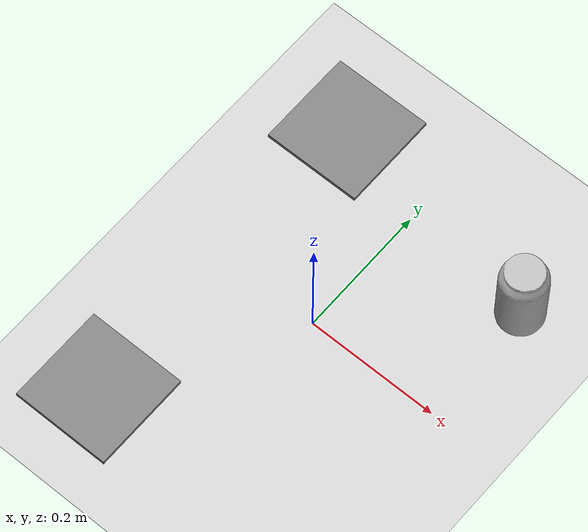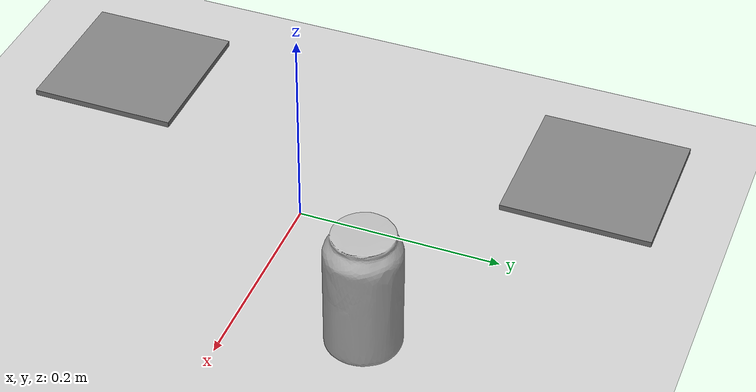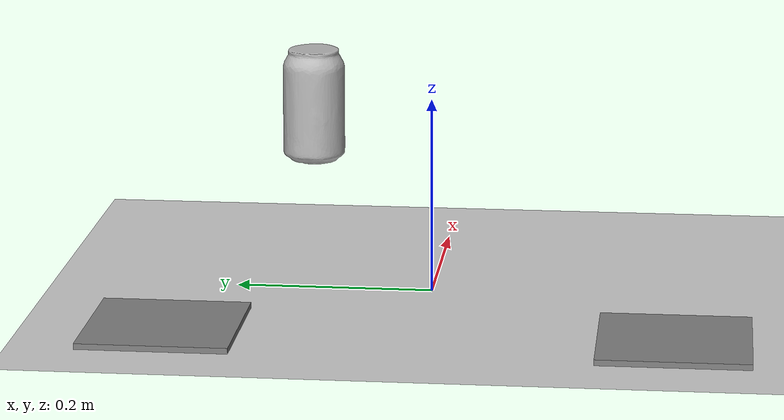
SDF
<?xml version="1.0" ?>
<sdf version="1.7">
  <world name="default">
    <physics name="default_physics" type="ode">
      <!-- 物理步长 4 ms（250 Hz），进一步降低单核 CPU 压力；PTP/MoveIt 控制器周期为 50 Hz，250 Hz 物理保有 5 倍裕度 -->
      <max_step_size>0.004</max_step_size>
      <real_time_factor>1</real_time_factor>
      <!-- 显式声明每秒物理步数，避免回退到 1000 Hz 默认值 -->
      <real_time_update_rate>250</real_time_update_rate>
      <gravity>0.0 0.0 -9.8</gravity>
    </physics>

    <plugin filename="gz-sim-physics-system" name="gz::sim::systems::Physics"/>
    <plugin filename="gz-sim-user-commands-system" name="gz::sim::systems::UserCommands"/>
    <plugin filename="gz-sim-scene-broadcaster-system" name="gz::sim::systems::SceneBroadcaster"/>
    <plugin filename="gz-sim-sensors-system" name="gz::sim::systems::Sensors">
      <render_engine>ogre2</render_engine>
    </plugin>
    <plugin filename="gz-sim-contact-system" name="gz::sim::systems::Contact"/>

    <include>
      <uri>https://fuel.gazebosim.org/1.0/OpenRobotics/models/Sun</uri>
    </include>

    <include>
      <uri>https://fuel.gazebosim.org/1.0/OpenRobotics/models/Ground Plane</uri>
    </include>

    <!-- 相机装在 torso_link 高 0.5m、pitch 25°向下、yaw 90°，视锥指向 +Y 方向。
         只有 y >= 0.10 的物体能进入点云。把 coke_can 移到 y=0.15 让它被看到。
         red_cylinder + mustard + cheezit 暂时注释，只留 coke_can 作为唯一目标，
         简化感知调试。 -->

    <include>
      <uri>model://coke_can</uri>
      <pose>0.22 0.15 0.075 0 0 0</pose>
    </include>

    <!-- Bin / drop zone -->
    <model name="bin_left">
      <static>true</static>
      <pose>-0.15 0.25 0 0 0 0</pose>
      <link name="link">
        <visual name="visual">
          <geometry><box><size>0.15 0.15 0.01</size></box></geometry>
          <material><ambient>0.5 0.5 0.5 1</ambient></material>
        </visual>
        <collision name="collision">
          <geometry><box><size>0.15 0.15 0.01</size></box></geometry>
        </collision>
      </link>
    </model>

    <model name="bin_right">
      <static>true</static>
      <pose>-0.15 -0.25 0 0 0 0</pose>
      <link name="link">
        <visual name="visual">
          <geometry><box><size>0.15 0.15 0.01</size></box></geometry>
          <material><ambient>0.5 0.5 0.5 1</ambient></material>
        </visual>
        <collision name="collision">
          <geometry><box><size>0.15 0.15 0.01</size></box></geometry>
        </collision>
      </link>
    </model>

    <scene>
      <shadows>false</shadows>
    </scene>
  </world>
</sdf>

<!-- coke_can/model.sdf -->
<sdf version="1.6">
  <model name="coke_can">
    <link name="link">
      <inertial>
        <pose>0 0 0.06 0 0 0</pose>
        <mass>0.390</mass>
        <inertia>
          <ixx>0.00055575</ixx>
          <ixy>0</ixy>
          <ixz>0</ixz>
          <iyy>0.00055575</iyy>
          <iyz>0</iyz>
          <izz>0.0001755</izz>
        </inertia>
      </inertial>
      <collision name="collision">
        <pose>0 0 0.06 0 0 0</pose>
        <geometry>
          <cylinder>
            <radius>0.033</radius>
            <length>0.12</length>
          </cylinder>
        </geometry>
        <surface>
          <friction>
            <ode>
              <mu>1.2</mu>
              <mu2>1.2</mu2>
            </ode>
          </friction>
          <contact>
            <ode>
              <kp>1000000.0</kp>
              <kd>10.0</kd>
              <min_depth>0.002</min_depth>
              <max_vel>0.1</max_vel>
            </ode>
          </contact>
        </surface>
      </collision>
      <visual name="visual">
        <pose>0.003937 0.0047244 -0.18 0 0 0</pose>
        <geometry>
          <mesh>
            <uri>model://coke_can/meshes/coke_can.dae</uri>
          </mesh>
        </geometry>
      </visual>
    </link>
  </model>
</sdf>
